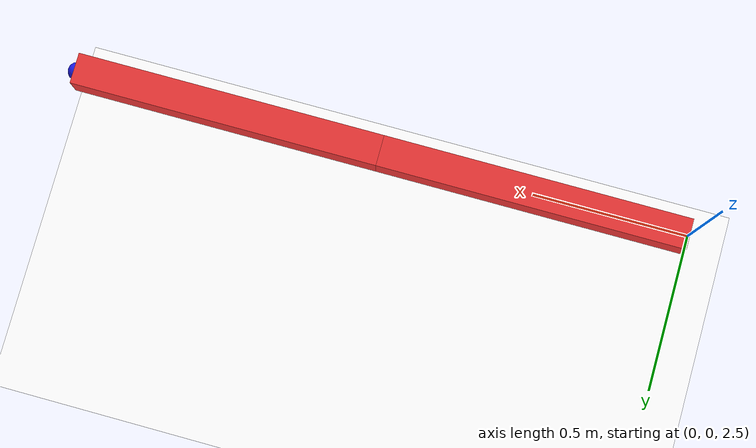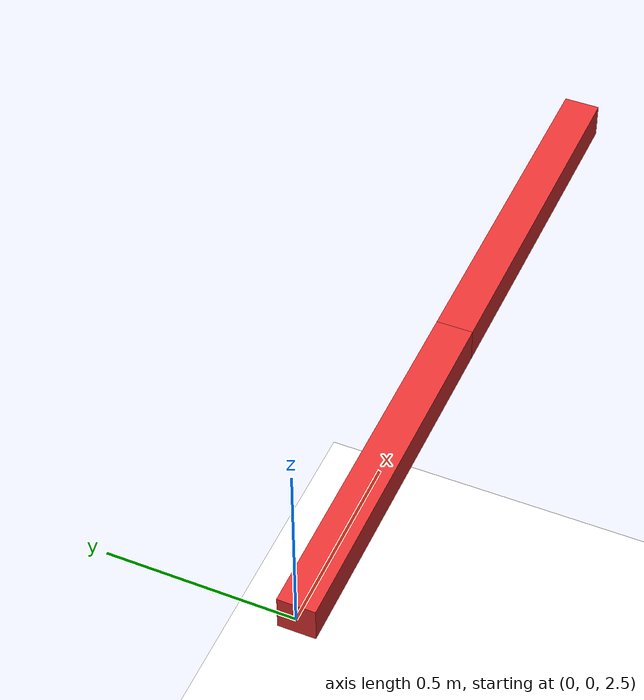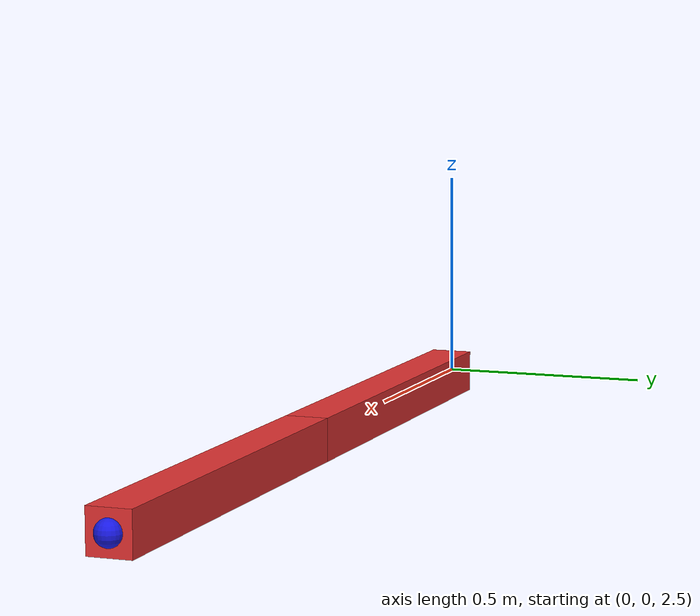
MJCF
<mujoco model="double_pendulum_pretty">
  <!-- Stable, fine integration for stick–slip capture -->
  <option timestep="0.002" integrator="RK4" gravity="0 0 -9.81" />
  <!-- Use radians to match ML training conventions -->
  <compiler angle="radian" coordinate="local" />

  <!-- ===== Presets for loss regimes ===== -->
  <default>
    <!-- Baseline geometry/inertia style -->
    <default class="geom_base">
      <geom friction="0.8 0.1 0.01" rgba="0.9 0.2 0.2 1" density="800"/>
    </default>

    <!-- IDEAL: no damping, no stiction -->
    <default class="ideal">
      <joint damping="0.0" frictionloss="0.0" armature="0.0"/>
    </default>

    <!-- VISCOUS only: smooth dissipation (good for SINDy/HNN) -->
    <default class="viscous">
      <joint damping="0.04" frictionloss="0.0" armature="0.0"/>
    </default>

    <!-- STICTION sets: add dry-friction threshold + small damping -->
    <default class="stiction_low">
      <joint damping="0.02" frictionloss="0.03" armature="0.0"/>
    </default>
    <default class="stiction_med">
      <joint damping="0.02" frictionloss="0.07" armature="0.0"/>
    </default>
    <default class="stiction_high">
      <joint damping="0.02" frictionloss="0.12" armature="0.0"/>
    </default>
  </default>

  <!-- ===== Assets (unchanged visuals) ===== -->
  <asset>
    <texture name="grid" type="2d" builtin="checker" width="512" height="512"
             rgb1="0.92 0.92 0.92" rgb2="0.82 0.82 0.82" />
    <material name="mat_grid" texture="grid" texrepeat="8 8" reflectance="0.0" rgba="1 1 1 1"/>
  </asset>

  <worldbody>
    <light name="top_key" pos="0 0 2.5" dir="0 0 -1" diffuse="1 1 1" specular="0.2 0.2 0.2" directional="true"/>
    <light name="fill" pos="2 -2 1.5" dir="-1 1 -0.5" diffuse="0.6 0.6 0.6" specular="0.1 0.1 0.1" directional="true"/>
    <geom name="floor" type="plane" size="6 6 0.1" pos="0 0 0" material="mat_grid" rgba="1 1 1 1"/>
    <camera name="iso" pos="1.6 -1.6 1.0" xyaxes="0.707 0.707 0  -0.408 0.408 0.816" />

    <!-- ===== Double pendulum =====
         Pick ONE regime by setting the class on each joint: ideal | viscous | stiction_low|med|high
    -->
    <body name="A" pos="0 0 2.5">
      <!-- Choose regime here -->
      <joint name="j1" type="hinge" class="stiction_med" axis="0 1 0" pos="0 0 0"/>

      <!-- Link 1 -->
      <geom class="geom_base" type="box" size=".5 .05 .05" pos=".5 0 0"/>

      <body name="B" pos="1 0 0">
        <!-- Same regime as j1 (keep consistent for datasets) -->
        <joint name="j2" type="hinge" class="stiction_med" axis="0 1 0" pos="0 0 0"/>

        <!-- Link 2 + tip marker -->
        <geom class="geom_base" type="box" size=".5 .05 .05" pos=".5 0 0"/>
        <geom name="tip_marker" type="sphere" size="0.03" pos="1.0 0 0" rgba="0.1 0.1 0.9 1"/>
      </body>
    </body>
  </worldbody>

  <!-- Actuators (zero by default; keep for probing if needed) -->
  <actuator>
    <motor name="m1" joint="j1" gear="1" ctrllimited="true" ctrlrange="-5 5"/>
    <motor name="m2" joint="j2" gear="1" ctrllimited="true" ctrlrange="-5 5"/>
  </actuator>

  <sensor>
    <jointpos name="t1" joint="j1"/>
    <jointpos name="t2" joint="j2"/>
    <jointvel name="w1" joint="j1"/>
    <jointvel name="w2" joint="j2"/>
    <actuatorfrc name="u1" actuator="m1"/>
    <actuatorfrc name="u2" actuator="m2"/>
  </sensor>

  <!-- Convenient start pose (radians now) -->
  <keyframe>
    <key name="rest" qpos="1.5707963 0.0" qvel="0 0"/>
  </keyframe>
</mujoco>
